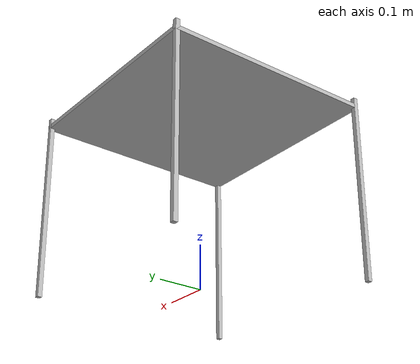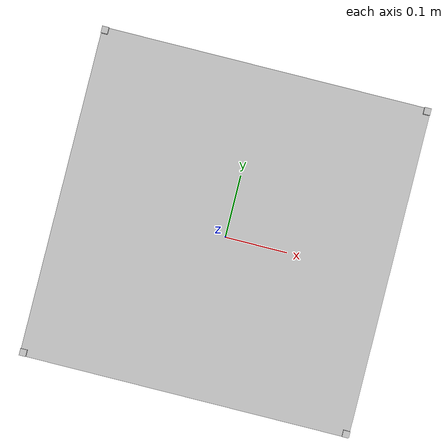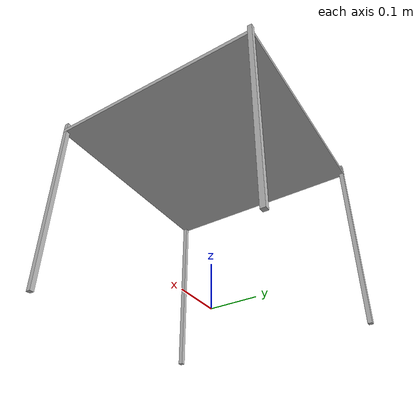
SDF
<?xml version="1.0" ?>
<sdf version="1.6">
  <model name="rwc2023/small_table">
    <static>true</static>
    <link name="1_link">
      <collision name="1_col">
        <geometry>
          <box>
            <size>0.495 0.495 0.01</size>
          </box>
        </geometry>
      </collision>
      <visual name="1_vis">
        <geometry>
          <box>
            <size>0.495 0.495 0.01</size>
          </box>
        </geometry>
      </visual>
      <pose>0.0 0.0 0.41 0 0 0</pose>
    </link>
    <link name="2_link">
      <collision name="2_col">
        <geometry>
          <box>
            <size>0.01 0.01 0.43</size>
          </box>
        </geometry>
      </collision>
      <visual name="2_vis">
        <geometry>
          <box>
            <size>0.01 0.01 0.43</size>
          </box>
        </geometry>
      </visual>
      <pose>-0.2425 -0.2425 0.215 0 0 0</pose>
    </link>
    <link name="3_link">
      <collision name="3_col">
        <geometry>
          <box>
            <size>0.01 0.01 0.43</size>
          </box>
        </geometry>
      </collision>
      <visual name="3_vis">
        <geometry>
          <box>
            <size>0.01 0.01 0.43</size>
          </box>
        </geometry>
      </visual>
      <pose>0.2425 -0.2425 0.215 0 0 0</pose>
    </link>
    <link name="4_link">
      <collision name="4_col">
        <geometry>
          <box>
            <size>0.01 0.01 0.43</size>
          </box>
        </geometry>
      </collision>
      <visual name="4_vis">
        <geometry>
          <box>
            <size>0.01 0.01 0.43</size>
          </box>
        </geometry>
      </visual>
      <pose>-0.2425 0.2425 0.215 0 0 0</pose>
    </link>
    <link name="5_link">
      <collision name="5_col">
        <geometry>
          <box>
            <size>0.01 0.01 0.43</size>
          </box>
        </geometry>
      </collision>
      <visual name="5_vis">
        <geometry>
          <box>
            <size>0.01 0.01 0.43</size>
          </box>
        </geometry>
      </visual>
      <pose>0.2425 0.2425 0.215 0 0 0</pose>
    </link>
    <link name="on_top_of">
      <virtual_volume name="on_top_of_vv">
        <geometry>
          <box>
            <size>0.475 0.435 0.25</size>
          </box>
        </geometry>
        <pose>0.0 0.0 0.56 0 0 0</pose>
      </virtual_volume>
    </link>
    <link name="in_front_of">
      <virtual_volume name="in_front_of_vv">
        <geometry>
          <box>
            <size>0.2 0.295 0.01</size>
          </box>
        </geometry>
        <pose>0.7475 0.0 0.005 0 0 0</pose>
      </virtual_volume>
    </link>
  </model>
</sdf>
